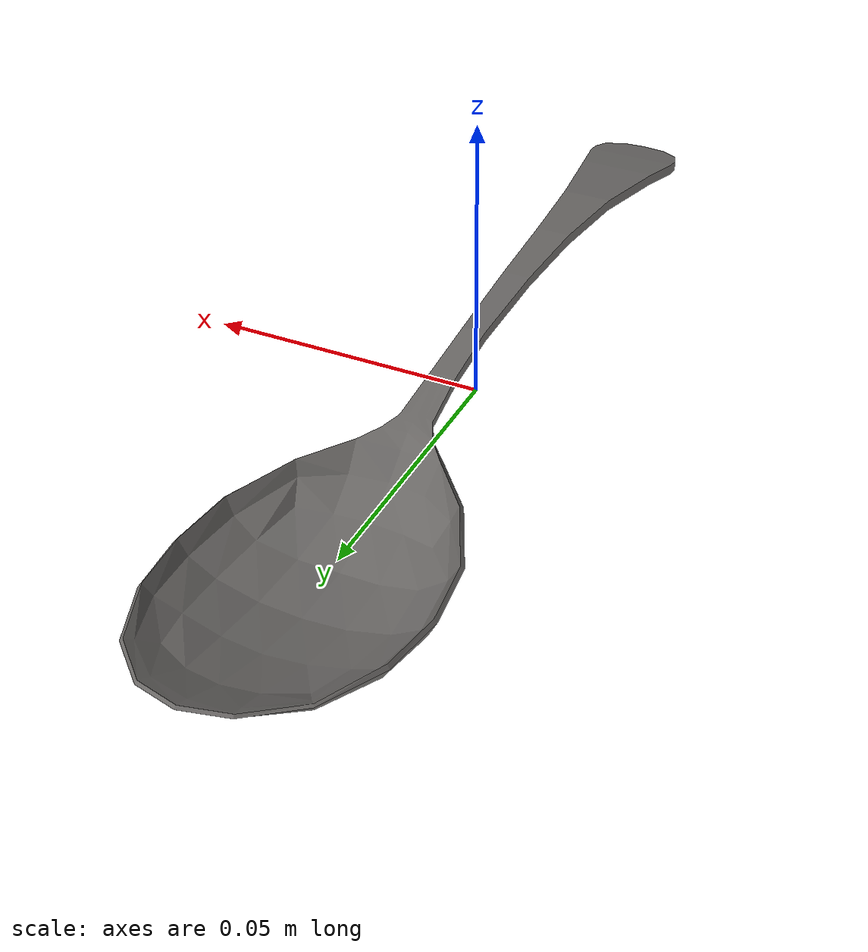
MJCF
<?xml version="1.0" encoding="utf-8"?>
<mujoco model="spoon">
  <compiler angle="radian" meshdir="assets" texturedir="assets" autolimits="true"/>
  <asset>
    <mesh file="spoon.obj"/>
    <mesh file="spoon_collision_001.obj"/>
    <mesh file="spoon_collision_002.obj"/>
    <texture type="2d" name="spoon" file="spoon.png"/>
    <material name="spoon" texture="spoon" specular="0.9" shininess="0.9" rgba="0.55 0.56 0.58 1"/>
  </asset>
  <default>
    <default class="spoon">
      <default class="visual">
        <geom type="mesh" mass="0.032" contype="0" conaffinity="0" group="2" material="spoon"/>
      </default>
      <default class="collision">
        <geom type="mesh" mass="0" group="3" solimp="0.98 0.99 0.001" solref="0.004 1"/>
      </default>
    </default>
  </default>
  <worldbody>
    <body name="spoon" childclass="spoon">
      <geom name="mesh" mesh="spoon" class="visual"/>
      <geom name="collider_001" mesh="spoon_collision_001" class="collision"/>
      <geom name="collider_002" mesh="spoon_collision_002" class="collision"/>
    </body>
  </worldbody>
</mujoco>
